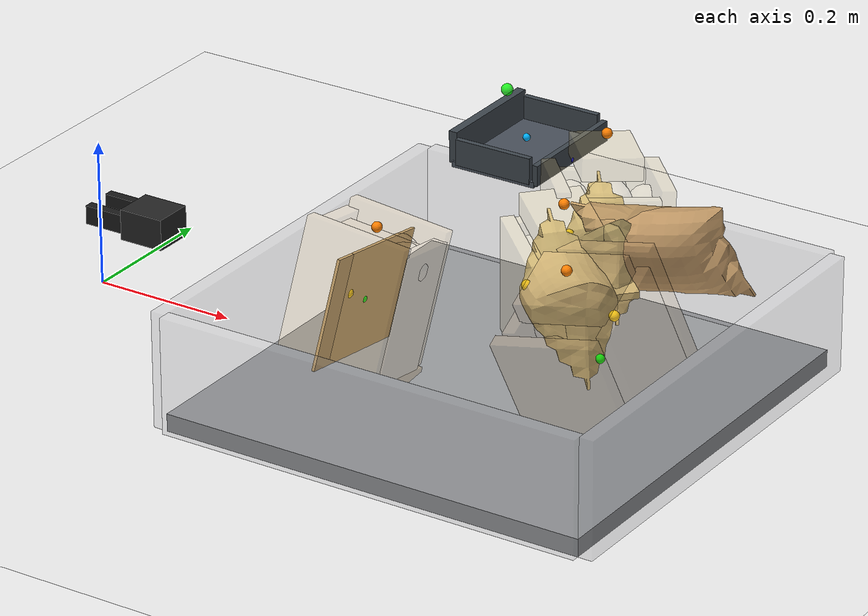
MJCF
<mujoco model="top_grasp_flat_scoop_drag_seed4">
  <compiler angle="radian" coordinate="local" inertiafromgeom="true" meshdir="D:/Michael/2025/01.Research/01.Parceldetection/16.Pybullet/bullet3-master (1)/bullet3-master/examples/pybullet/examples/DeformableTest/Sackcodex2/object"/>
  <option timestep="0.002" gravity="0 0 -9.81" integrator="implicitfast" iterations="100" tolerance="1e-8"/>
  <size memory="768M" nconmax="12000"/>

  <visual>
    <global azimuth="128" elevation="-20"/>
    <headlight ambient="0.34 0.34 0.34" diffuse="0.78 0.78 0.78" specular="0.15 0.15 0.15"/>
    <rgba haze="0.11 0.13 0.18 1"/>
  </visual>

  <default>
    <geom condim="4" friction="1.15 0.03 0.01" margin="0.003" solimp="0.93 0.98 0.003" solref="0.012 1"/>
    <joint damping="1.2" armature="0.002"/>
    <position kp="2500" forcelimited="true" forcerange="-420 420"/>
    <motor ctrllimited="true"/>
  </default>

  <asset>
    <mesh name="sack_0_visual_mesh" file="sack3.obj" scale="0.0757 0.0757 0.0808"/>
    <mesh name="sack_1_visual_mesh" file="sack9.obj" scale="0.0732 0.0732 0.0790"/>
    <mesh name="sack_2_visual_mesh" file="sack2.obj" scale="0.0718 0.0718 0.0745"/>
    <mesh name="sack_3_visual_mesh" file="sack8.obj" scale="0.0688 0.0688 0.0734"/>
  </asset>

  <worldbody>
    <light name="key" pos="0.85 0.15 1.8" dir="-0.2 -0.1 -1" directional="true"/>
    <geom name="floor" type="plane" size="2 2 0.1" rgba="0.93 0.93 0.93 1"/>
    <geom name="work_pad" type="box" pos="0.62 0 0.012" size="0.30 0.30 0.012" rgba="0.60 0.61 0.62 1" friction="1.4 0.05 0.01"/>
    <geom name="corral_front" type="box" pos="0.93 0.00 0.08" size="0.010 0.30 0.08" rgba="0.55 0.55 0.58 0.22" friction="1.0 0.03 0.01"/>
    <geom name="corral_back" type="box" pos="0.31 0.00 0.08" size="0.010 0.30 0.08" rgba="0.55 0.55 0.58 0.18" friction="1.0 0.03 0.01"/>
    <geom name="corral_left" type="box" pos="0.62 0.30 0.08" size="0.30 0.010 0.08" rgba="0.55 0.55 0.58 0.14" friction="1.0 0.03 0.01"/>
    <geom name="corral_right" type="box" pos="0.62 -0.30 0.08" size="0.30 0.010 0.08" rgba="0.55 0.55 0.58 0.14" friction="1.0 0.03 0.01"/>
    <camera name="overview" pos="1.22 0.00 0.92" xyaxes="0 1 0 -0.46 0 0.88"/>

    <body name="gripper_mocap" mocap="true" pos="0.36 -0.33 0.30" quat="0.707107 0 -0.707107 0"/>
    <body name="scoop_mocap" mocap="true" pos="0.42 0.28 0.20" quat="1 0 0 0"/>

    <body name="gripper_tool" pos="0.36 -0.33 0.30" quat="0.707107 0 -0.707107 0">
      <freejoint name="gripper_tool_free"/>
      <inertial pos="0 0 0.04" mass="0.08" diaginertia="0.0002 0.0002 0.0002"/>
      <geom name="gripper_palm" type="box" pos="0 0 0.030" size="0.020 0.026 0.030" rgba="0.14 0.14 0.14 1"/>
      <body name="left_finger_body" pos="0 0 0.072">
        <joint name="left_finger_slide" type="slide" axis="0 1 0" limited="true" range="0.010 0.040" damping="12"/>
        <geom name="left_finger_geom" type="box" pos="0 0.020 0" size="0.012 0.006 0.040" rgba="0.10 0.10 0.10 1" friction="2.2 0.05 0.01"/>
      </body>
      <body name="right_finger_body" pos="0 0 0.072">
        <joint name="right_finger_slide" type="slide" axis="0 -1 0" limited="true" range="0.010 0.040" damping="12"/>
        <geom name="right_finger_geom" type="box" pos="0 -0.020 0" size="0.012 0.006 0.040" rgba="0.10 0.10 0.10 1" friction="2.2 0.05 0.01"/>
      </body>
      <site name="gripper_pinch_site" pos="0 0 0.074" size="0.006" rgba="1 0 0 1"/>
    </body>

    <body name="scoop_tool" pos="0.42 0.28 0.20" quat="1 0 0 0">
      <freejoint name="scoop_tool_free"/>
      <inertial pos="0 0 0.02" mass="0.10" diaginertia="0.0003 0.0003 0.0003"/>
      <geom name="scoop_plate" type="box" pos="0.062 0 0" size="0.062 0.085 0.004" rgba="0.28 0.31 0.35 1" friction="1.7 0.05 0.01"/>
      <geom name="scoop_lip" type="box" pos="0.126 0 0.014" size="0.004 0.085 0.014" rgba="0.24 0.27 0.30 1" friction="1.7 0.05 0.01"/>
      <geom name="scoop_left_rail" type="box" pos="0.062 0.082 0.018" size="0.056 0.004 0.018" rgba="0.24 0.27 0.30 1"/>
      <geom name="scoop_right_rail" type="box" pos="0.062 -0.082 0.018" size="0.056 0.004 0.018" rgba="0.24 0.27 0.30 1"/>
      <geom name="scoop_backstop" type="box" pos="0.000 0 0.022" size="0.006 0.082 0.022" rgba="0.24 0.27 0.30 1"/>
      <site name="scoop_tip_site" pos="0.126 0 0.005" size="0.005" rgba="0 0 1 1"/>
      <site name="scoop_center_site" pos="0.060 0 0.020" size="0.005" rgba="0 0.7 1 1"/>
      <site name="score_overlay_site" pos="0.030 0 0.080" size="0.008" rgba="0 1 0 0.8"/>
    </body>

    <body name="sack_0" pos="0.7784 -0.0211 0.1077" euler="0.3644 -0.1566 -3.0171">
      <freejoint name="sack_0_free"/>

      <geom name="sack_0_visual" type="mesh" mesh="sack_0_visual_mesh" rgba="0.760 0.600 0.400 0.92" contype="0" conaffinity="0"/>
      <site name="sack_0_center_site" pos="0 0 0.000" size="0.006" rgba="0 1 0 1"/>
      <site name="sack_0_top_site" pos="0 -0.0060 0.1407" size="0.007" rgba="1 0.5 0 1"/>
      <site name="sack_0_side_site" pos="0.0000 -0.0585 0.018" size="0.007" rgba="1 0.8 0 1"/>

      <geom name="sack_0_core_geom" type="ellipsoid" pos="0 0 0.0059" size="0.0451 0.0355 0.0794" mass="0.9932" rgba="0.760 0.600 0.400 0.12" friction="1.0 0.03 0.01"/>
      <geom name="sack_0_core_front" type="capsule" fromto="-0.0200 0 -0.0200 0.0450 0 0.0600" size="0.0309" mass="0.2365" rgba="0.760 0.600 0.400 0.10"/>
      <geom name="sack_0_core_left" type="capsule" fromto="-0.008 0.0413 -0.010 0.018 0.0593 0.060" size="0.0242" mass="0.4256" rgba="0.760 0.600 0.400 0.10"/>
      <geom name="sack_0_core_right" type="capsule" fromto="-0.006 -0.0413 -0.008 0.020 -0.0613 0.054" size="0.0223" mass="0.4256" rgba="0.760 0.600 0.400 0.10"/>

      <body name="sack_0_bottom_skin" pos="0 -0.0098 -0.1016">
        <joint name="sack_0_bottom_x" type="slide" axis="1 0 0" limited="true" range="-0.012 0.012" damping="18" stiffness="487.3"/>
        <joint name="sack_0_bottom_y" type="slide" axis="0 1 0" limited="true" range="-0.012 0.012" damping="18" stiffness="487.3"/>
        <joint name="sack_0_bottom_z" type="slide" axis="0 0 1" limited="true" range="-0.008 0.020" damping="24" stiffness="600.0"/>
        <geom name="sack_0_bottom_support" type="box" size="0.0759 0.0645 0.0100" mass="0.1892" rgba="0.760 0.600 0.400 0.34" friction="1.55 0.05 0.01"/>
      </body>

      <body name="sack_0_top_skin" pos="0.0000 -0.0060 0.1107">
        <joint name="sack_0_top_x" type="slide" axis="1 0 0" limited="true" range="-0.018 0.018" damping="12" stiffness="187.3"/>
        <joint name="sack_0_top_y" type="slide" axis="0 1 0" limited="true" range="-0.018 0.018" damping="12" stiffness="187.3"/>
        <joint name="sack_0_top_z" type="slide" axis="0 0 1" limited="true" range="-0.040 0.010" damping="14" stiffness="139.1"/>
        <geom name="sack_0_top_grip" type="box" size="0.0599 0.0485 0.0150" mass="0.1419" rgba="0.760 0.600 0.400 0.26" friction="2.2 0.05 0.01"/>
      </body>

      <body name="sack_0_left_skin" pos="0 0.0898 0.010">
        <joint name="sack_0_left_side_slide" type="slide" axis="0 -1 0" limited="true" range="-0.028 0.016" damping="16" stiffness="247.9"/>
        <geom name="sack_0_side_left" type="box" size="0.0719 0.0090 0.0996" mass="0.1419" rgba="0.760 0.600 0.400 0.24"/>
      </body>

      <body name="sack_0_right_skin" pos="0 -0.0858 0.010">
        <joint name="sack_0_right_side_slide" type="slide" axis="0 1 0" limited="true" range="-0.028 0.016" damping="16" stiffness="229.7"/>
        <geom name="sack_0_side_right" type="box" size="0.0719 0.0090 0.0996" mass="0.1419" rgba="0.760 0.600 0.400 0.24"/>
      </body>

      <body name="sack_0_front_skin" pos="0.0659 0 0.000">
        <joint name="sack_0_front_slide" type="slide" axis="-1 0 0" limited="true" range="-0.022 0.012" damping="15" stiffness="233.6"/>
        <geom name="sack_0_front_panel" type="box" size="0.0090 0.0645 0.0976" mass="0.1182" rgba="0.760 0.600 0.400 0.22"/>
      </body>

      <body name="sack_0_back_skin" pos="-0.0659 0 0.000">
        <joint name="sack_0_back_slide" type="slide" axis="1 0 0" limited="true" range="-0.022 0.012" damping="15" stiffness="215.5"/>
        <geom name="sack_0_back_panel" type="box" size="0.0090 0.0645 0.0976" mass="0.1182" rgba="0.760 0.600 0.400 0.22"/>
      </body>

      <body name="sack_0_local_patch" pos="0.0000 -0.0333 0.0309">
        <joint name="sack_0_bulge_y" type="slide" axis="0 1 0" limited="true" range="-0.020 0.020" damping="8" stiffness="81.8"/>
        <joint name="sack_0_bulge_z" type="slide" axis="0 0 1" limited="true" range="-0.014 0.028" damping="8" stiffness="86.4"/>
        <geom name="sack_0_compliant_patch" type="ellipsoid" size="0.0202 0.0164 0.0261" mass="0.0946" rgba="0.760 0.600 0.400 0.28"/>
      </body>
    </body>

    <body name="sack_1" pos="0.6799 0.0614 0.1306" euler="0.0460 0.0283 2.3879">
      <freejoint name="sack_1_free"/>

      <geom name="sack_1_visual" type="mesh" mesh="sack_1_visual_mesh" rgba="0.840 0.740 0.480 0.92" contype="0" conaffinity="0"/>
      <site name="sack_1_center_site" pos="0 0 0.000" size="0.006" rgba="0 1 0 1"/>
      <site name="sack_1_top_site" pos="0 0.0060 0.1341" size="0.007" rgba="1 0.5 0 1"/>
      <site name="sack_1_side_site" pos="0.0140 0.0497 0.018" size="0.007" rgba="1 0.8 0 1"/>

      <geom name="sack_1_core_geom" type="ellipsoid" pos="0 0 0.0060" size="0.0504 0.0422 0.0896" mass="0.9678" rgba="0.840 0.740 0.480 0.12" friction="1.0 0.03 0.01"/>
      <geom name="sack_1_core_front" type="capsule" fromto="-0.0060 0 -0.0200 0.0590 0 0.0600" size="0.0313" mass="0.2304" rgba="0.840 0.740 0.480 0.10"/>
      <geom name="sack_1_core_left" type="capsule" fromto="-0.008 0.0218 -0.010 0.018 0.0398 0.060" size="0.0240" mass="0.4148" rgba="0.840 0.740 0.480 0.10"/>
      <geom name="sack_1_core_right" type="capsule" fromto="-0.006 -0.0218 -0.008 0.020 -0.0418 0.054" size="0.0220" mass="0.4148" rgba="0.840 0.740 0.480 0.10"/>

      <body name="sack_1_bottom_skin" pos="0 0.0066 -0.0814">
        <joint name="sack_1_bottom_x" type="slide" axis="1 0 0" limited="true" range="-0.012 0.012" damping="18" stiffness="498.6"/>
        <joint name="sack_1_bottom_y" type="slide" axis="0 1 0" limited="true" range="-0.012 0.012" damping="18" stiffness="498.6"/>
        <joint name="sack_1_bottom_z" type="slide" axis="0 0 1" limited="true" range="-0.008 0.020" damping="24" stiffness="613.8"/>
        <geom name="sack_1_bottom_support" type="box" size="0.0721 0.0557 0.0100" mass="0.1843" rgba="0.840 0.740 0.480 0.34" friction="1.55 0.05 0.01"/>
      </body>

      <body name="sack_1_top_skin" pos="0.0140 0.0060 0.1041">
        <joint name="sack_1_top_x" type="slide" axis="1 0 0" limited="true" range="-0.018 0.018" damping="12" stiffness="191.7"/>
        <joint name="sack_1_top_y" type="slide" axis="0 1 0" limited="true" range="-0.018 0.018" damping="12" stiffness="191.7"/>
        <joint name="sack_1_top_z" type="slide" axis="0 0 1" limited="true" range="-0.040 0.010" damping="14" stiffness="142.9"/>
        <geom name="sack_1_top_grip" type="box" size="0.0561 0.0397 0.0150" mass="0.1383" rgba="0.840 0.740 0.480 0.26" friction="2.2 0.05 0.01"/>
      </body>

      <body name="sack_1_left_skin" pos="0 0.0615 0.010">
        <joint name="sack_1_left_side_slide" type="slide" axis="0 -1 0" limited="true" range="-0.028 0.016" damping="16" stiffness="255.6"/>
        <geom name="sack_1_side_left" type="box" size="0.0681 0.0090 0.0794" mass="0.1383" rgba="0.840 0.740 0.480 0.24"/>
      </body>

      <body name="sack_1_right_skin" pos="0 -0.0575 0.010">
        <joint name="sack_1_right_side_slide" type="slide" axis="0 1 0" limited="true" range="-0.028 0.016" damping="16" stiffness="236.8"/>
        <geom name="sack_1_side_right" type="box" size="0.0681 0.0090 0.0794" mass="0.1383" rgba="0.840 0.740 0.480 0.24"/>
      </body>

      <body name="sack_1_front_skin" pos="0.0761 0 0.000">
        <joint name="sack_1_front_slide" type="slide" axis="-1 0 0" limited="true" range="-0.022 0.012" damping="15" stiffness="239.3"/>
        <geom name="sack_1_front_panel" type="box" size="0.0090 0.0557 0.0774" mass="0.1152" rgba="0.840 0.740 0.480 0.22"/>
      </body>

      <body name="sack_1_back_skin" pos="-0.0621 0 0.000">
        <joint name="sack_1_back_slide" type="slide" axis="1 0 0" limited="true" range="-0.022 0.012" damping="15" stiffness="220.5"/>
        <geom name="sack_1_back_panel" type="box" size="0.0090 0.0557 0.0774" mass="0.1152" rgba="0.840 0.740 0.480 0.22"/>
      </body>

      <body name="sack_1_local_patch" pos="0.0084 0.0138 0.0271">
        <joint name="sack_1_bulge_y" type="slide" axis="0 1 0" limited="true" range="-0.020 0.020" damping="8" stiffness="74.3"/>
        <joint name="sack_1_bulge_z" type="slide" axis="0 0 1" limited="true" range="-0.014 0.028" damping="8" stiffness="80.7"/>
        <geom name="sack_1_compliant_patch" type="ellipsoid" size="0.0200 0.0160 0.0260" mass="0.0922" rgba="0.840 0.740 0.480 0.28"/>
      </body>
    </body>

    <body name="sack_2" pos="0.4685 -0.0846 0.1349" euler="-0.2198 0.1244 0.1186">
      <freejoint name="sack_2_free"/>

      <geom name="sack_2_visual" type="mesh" mesh="sack_2_visual_mesh" rgba="0.820 0.670 0.440 0.92" contype="0" conaffinity="0"/>
      <site name="sack_2_center_site" pos="0 0 0.000" size="0.006" rgba="0 1 0 1"/>
      <site name="sack_2_top_site" pos="0 -0.0060 0.0970" size="0.007" rgba="1 0.5 0 1"/>
      <site name="sack_2_side_site" pos="0.0000 -0.0486 0.018" size="0.007" rgba="1 0.8 0 1"/>

      <geom name="sack_2_core_geom" type="ellipsoid" pos="0 0 0.0056" size="0.0453 0.0354 0.0675" mass="0.6688" rgba="0.820 0.670 0.440 0.12" friction="1.0 0.03 0.01"/>
      <geom name="sack_2_core_front" type="capsule" fromto="-0.0200 0 -0.0200 0.0450 0 0.0600" size="0.0299" mass="0.1592" rgba="0.820 0.670 0.440 0.10"/>
      <geom name="sack_2_core_left" type="capsule" fromto="-0.008 0.0227 -0.010 0.018 0.0407 0.060" size="0.0240" mass="0.2866" rgba="0.820 0.670 0.440 0.10"/>
      <geom name="sack_2_core_right" type="capsule" fromto="-0.006 -0.0227 -0.008 0.020 -0.0427 0.054" size="0.0220" mass="0.2866" rgba="0.820 0.670 0.440 0.10"/>

      <body name="sack_2_bottom_skin" pos="0 0.0129 -0.0930">
        <joint name="sack_2_bottom_x" type="slide" axis="1 0 0" limited="true" range="-0.012 0.012" damping="18" stiffness="458.4"/>
        <joint name="sack_2_bottom_y" type="slide" axis="0 1 0" limited="true" range="-0.012 0.012" damping="18" stiffness="458.4"/>
        <joint name="sack_2_bottom_z" type="slide" axis="0 0 1" limited="true" range="-0.008 0.020" damping="24" stiffness="564.7"/>
        <geom name="sack_2_bottom_support" type="box" size="0.0729 0.0546 0.0100" mass="0.1274" rgba="0.820 0.670 0.440 0.34" friction="1.55 0.05 0.01"/>
      </body>

      <body name="sack_2_top_skin" pos="0.0000 -0.0060 0.0670">
        <joint name="sack_2_top_x" type="slide" axis="1 0 0" limited="true" range="-0.018 0.018" damping="12" stiffness="176.0"/>
        <joint name="sack_2_top_y" type="slide" axis="0 1 0" limited="true" range="-0.018 0.018" damping="12" stiffness="176.0"/>
        <joint name="sack_2_top_z" type="slide" axis="0 0 1" limited="true" range="-0.040 0.010" damping="14" stiffness="129.5"/>
        <geom name="sack_2_top_grip" type="box" size="0.0569 0.0386 0.0150" mass="0.0955" rgba="0.820 0.670 0.440 0.26" friction="2.2 0.05 0.01"/>
      </body>

      <body name="sack_2_left_skin" pos="0 0.0613 0.010">
        <joint name="sack_2_left_side_slide" type="slide" axis="0 -1 0" limited="true" range="-0.028 0.016" damping="16" stiffness="227.6"/>
        <geom name="sack_2_side_left" type="box" size="0.0689 0.0090 0.0910" mass="0.0955" rgba="0.820 0.670 0.440 0.24"/>
      </body>

      <body name="sack_2_right_skin" pos="0 -0.0573 0.010">
        <joint name="sack_2_right_side_slide" type="slide" axis="0 1 0" limited="true" range="-0.028 0.016" damping="16" stiffness="211.0"/>
        <geom name="sack_2_side_right" type="box" size="0.0689 0.0090 0.0910" mass="0.0955" rgba="0.820 0.670 0.440 0.24"/>
      </body>

      <body name="sack_2_front_skin" pos="0.0629 0 0.000">
        <joint name="sack_2_front_slide" type="slide" axis="-1 0 0" limited="true" range="-0.022 0.012" damping="15" stiffness="219.2"/>
        <geom name="sack_2_front_panel" type="box" size="0.0090 0.0546 0.0890" mass="0.0796" rgba="0.820 0.670 0.440 0.22"/>
      </body>

      <body name="sack_2_back_skin" pos="-0.0629 0 0.000">
        <joint name="sack_2_back_slide" type="slide" axis="1 0 0" limited="true" range="-0.022 0.012" damping="15" stiffness="202.6"/>
        <geom name="sack_2_back_panel" type="box" size="0.0090 0.0546 0.0890" mass="0.0796" rgba="0.820 0.670 0.440 0.22"/>
      </body>

      <body name="sack_2_local_patch" pos="0.0000 -0.0147 0.0405">
        <joint name="sack_2_bulge_y" type="slide" axis="0 1 0" limited="true" range="-0.020 0.020" damping="8" stiffness="101.1"/>
        <joint name="sack_2_bulge_z" type="slide" axis="0 0 1" limited="true" range="-0.014 0.028" damping="8" stiffness="100.8"/>
        <geom name="sack_2_compliant_patch" type="ellipsoid" size="0.0200 0.0161 0.0263" mass="0.0637" rgba="0.820 0.670 0.440 0.28"/>
      </body>
    </body>

    <body name="sack_3" pos="0.6671 0.1749 0.1525" euler="-0.1041 -0.0305 2.2751">
      <freejoint name="sack_3_free"/>

      <geom name="sack_3_visual" type="mesh" mesh="sack_3_visual_mesh" rgba="0.840 0.740 0.480 0.92" contype="0" conaffinity="0"/>
      <site name="sack_3_center_site" pos="0 0 0.000" size="0.006" rgba="0 1 0 1"/>
      <site name="sack_3_top_site" pos="0 0.0060 0.1520" size="0.007" rgba="1 0.5 0 1"/>
      <site name="sack_3_side_site" pos="0.0000 0.0490 0.018" size="0.007" rgba="1 0.8 0 1"/>

      <geom name="sack_3_core_geom" type="ellipsoid" pos="0 0 0.0060" size="0.0501 0.0417 0.0888" mass="1.2094" rgba="0.840 0.740 0.480 0.12" friction="1.0 0.03 0.01"/>
      <geom name="sack_3_core_front" type="capsule" fromto="-0.0200 0 -0.0200 0.0450 0 0.0600" size="0.0309" mass="0.2880" rgba="0.840 0.740 0.480 0.10"/>
      <geom name="sack_3_core_left" type="capsule" fromto="-0.008 0.0296 -0.010 0.018 0.0476 0.060" size="0.0241" mass="0.5183" rgba="0.840 0.740 0.480 0.10"/>
      <geom name="sack_3_core_right" type="capsule" fromto="-0.006 -0.0296 -0.008 0.020 -0.0496 0.054" size="0.0221" mass="0.5183" rgba="0.840 0.740 0.480 0.10"/>

      <body name="sack_3_bottom_skin" pos="0 -0.0029 -0.0889">
        <joint name="sack_3_bottom_x" type="slide" axis="1 0 0" limited="true" range="-0.012 0.012" damping="18" stiffness="487.1"/>
        <joint name="sack_3_bottom_y" type="slide" axis="0 1 0" limited="true" range="-0.012 0.012" damping="18" stiffness="487.1"/>
        <joint name="sack_3_bottom_z" type="slide" axis="0 0 1" limited="true" range="-0.008 0.020" damping="24" stiffness="599.8"/>
        <geom name="sack_3_bottom_support" type="box" size="0.0718 0.0550 0.0100" mass="0.2304" rgba="0.840 0.740 0.480 0.34" friction="1.55 0.05 0.01"/>
      </body>

      <body name="sack_3_top_skin" pos="0.0000 0.0060 0.1220">
        <joint name="sack_3_top_x" type="slide" axis="1 0 0" limited="true" range="-0.018 0.018" damping="12" stiffness="187.2"/>
        <joint name="sack_3_top_y" type="slide" axis="0 1 0" limited="true" range="-0.018 0.018" damping="12" stiffness="187.2"/>
        <joint name="sack_3_top_z" type="slide" axis="0 0 1" limited="true" range="-0.040 0.010" damping="14" stiffness="139.0"/>
        <geom name="sack_3_top_grip" type="box" size="0.0558 0.0390 0.0150" mass="0.1728" rgba="0.840 0.740 0.480 0.26" friction="2.2 0.05 0.01"/>
      </body>

      <body name="sack_3_left_skin" pos="0 0.0686 0.010">
        <joint name="sack_3_left_side_slide" type="slide" axis="0 -1 0" limited="true" range="-0.028 0.016" damping="16" stiffness="248.0"/>
        <geom name="sack_3_side_left" type="box" size="0.0678 0.0090 0.0869" mass="0.1728" rgba="0.840 0.740 0.480 0.24"/>
      </body>

      <body name="sack_3_right_skin" pos="0 -0.0646 0.010">
        <joint name="sack_3_right_side_slide" type="slide" axis="0 1 0" limited="true" range="-0.028 0.016" damping="16" stiffness="229.9"/>
        <geom name="sack_3_side_right" type="box" size="0.0678 0.0090 0.0869" mass="0.1728" rgba="0.840 0.740 0.480 0.24"/>
      </body>

      <body name="sack_3_front_skin" pos="0.0618 0 0.000">
        <joint name="sack_3_front_slide" type="slide" axis="-1 0 0" limited="true" range="-0.022 0.012" damping="15" stiffness="233.5"/>
        <geom name="sack_3_front_panel" type="box" size="0.0090 0.0550 0.0849" mass="0.1440" rgba="0.840 0.740 0.480 0.22"/>
      </body>

      <body name="sack_3_back_skin" pos="-0.0618 0 0.000">
        <joint name="sack_3_back_slide" type="slide" axis="1 0 0" limited="true" range="-0.022 0.012" damping="15" stiffness="215.4"/>
        <geom name="sack_3_back_panel" type="box" size="0.0090 0.0550 0.0849" mass="0.1440" rgba="0.840 0.740 0.480 0.22"/>
      </body>

      <body name="sack_3_local_patch" pos="0.0000 0.0216 0.0310">
        <joint name="sack_3_bulge_y" type="slide" axis="0 1 0" limited="true" range="-0.020 0.020" damping="8" stiffness="81.9"/>
        <joint name="sack_3_bulge_z" type="slide" axis="0 0 1" limited="true" range="-0.014 0.028" damping="8" stiffness="86.5"/>
        <geom name="sack_3_compliant_patch" type="ellipsoid" size="0.0201 0.0162 0.0260" mass="0.1152" rgba="0.840 0.740 0.480 0.28"/>
      </body>
    </body>
  </worldbody>

  <equality>
    <weld name="gripper_follow" body1="gripper_mocap" body2="gripper_tool" torquescale="400" solref="0.002 1" solimp="0.99 0.999 0.0001"/>
    <weld name="scoop_follow" body1="scoop_mocap" body2="scoop_tool" torquescale="500" solref="0.002 1" solimp="0.99 0.999 0.0001"/>
  </equality>

  <actuator>
    <position name="left_finger_act" joint="left_finger_slide" ctrlrange="0.010 0.040" kp="2800" forcerange="-220 220"/>
    <position name="right_finger_act" joint="right_finger_slide" ctrlrange="0.010 0.040" kp="2800" forcerange="-220 220"/>
  </actuator>

  <contact>
    <exclude body1="sack_0_top_skin" body2="sack_0_left_skin"/>
    <exclude body1="sack_0_top_skin" body2="sack_0_right_skin"/>
    <exclude body1="sack_1_top_skin" body2="sack_1_left_skin"/>
    <exclude body1="sack_1_top_skin" body2="sack_1_right_skin"/>
    <exclude body1="sack_2_top_skin" body2="sack_2_left_skin"/>
    <exclude body1="sack_2_top_skin" body2="sack_2_right_skin"/>
    <exclude body1="sack_3_top_skin" body2="sack_3_left_skin"/>
    <exclude body1="sack_3_top_skin" body2="sack_3_right_skin"/>
  </contact>
</mujoco>
